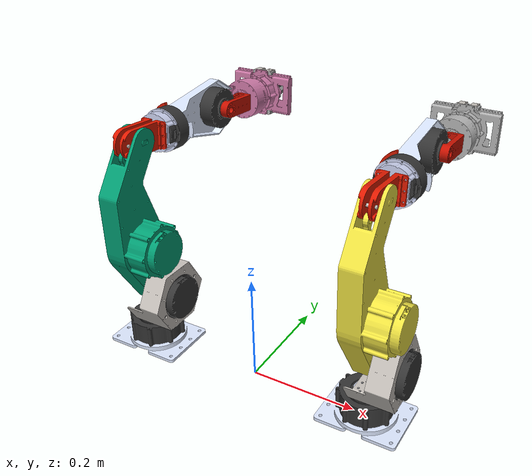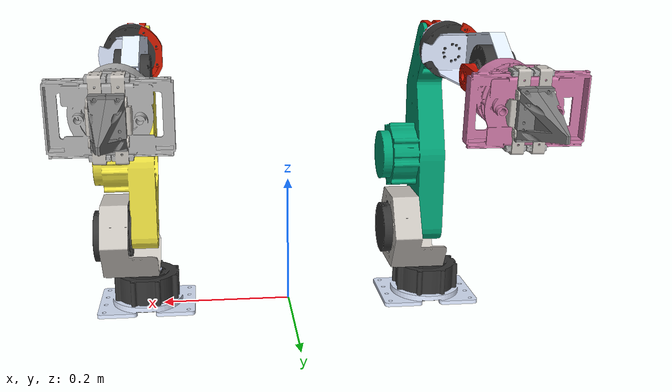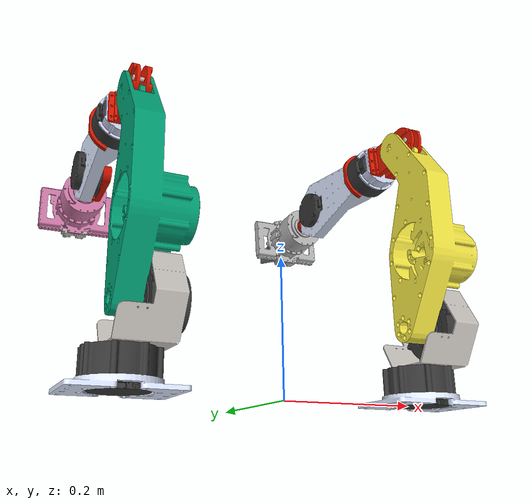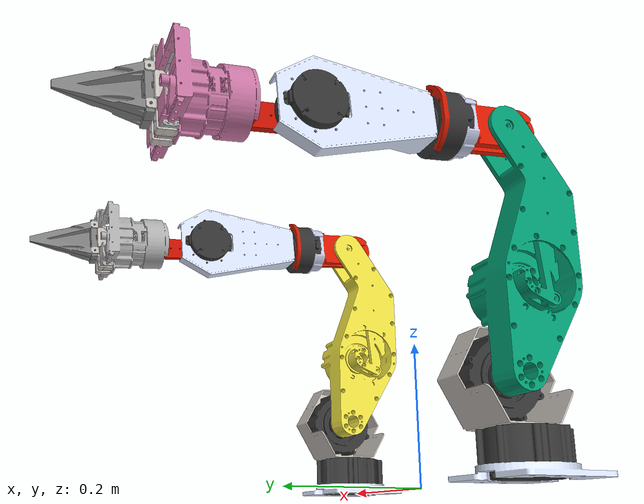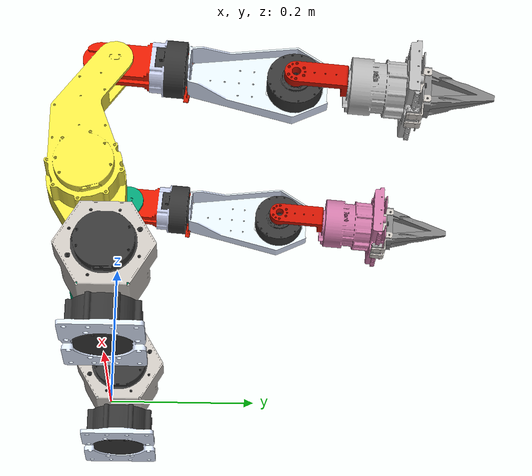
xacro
<?xml version="1.0"?>
<robot xmlns:xacro="http://www.ros.org/wiki/xacro" name="dual_mevion">

  <xacro:include filename="$(find mevion)/models/mevion_dae.urdf.xacro"/>

  <xacro:mevion prefix="RL"/>
  <xacro:mevion prefix="RF"/>

  <link name="world"/>

  <joint name="RL_world_joint" type="fixed">
    <parent link="world"/>
    <child link="RL_base_link"/>
    <origin xyz="-0.225 0 0" rpy="0 0 1.5708"/>
  </joint>

  <joint name="RF_world_joint" type="fixed">
    <parent link="world"/>
    <child link="RF_base_link"/>
    <origin xyz="0.225 0 0" rpy="0 0 1.5708"/>
  </joint>

</robot>

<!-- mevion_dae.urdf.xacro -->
<robot xmlns:xacro="http://www.ros.org/wiki/xacro">
  <xacro:macro name="mevion" params="prefix">
    <link name="${prefix}_base_link">
      <inertial>
        <origin xyz="4.48986707996124e-05 1.56759680411714e-05 0.0271570776976561" rpy="0.0 -0.0 0.0"/>
        <mass value="1.15231569296786"/>
        <inertia ixx="0.00121639765481248" ixy="2.16045733589472e-06" ixz="1.27211558344771e-07" iyy="0.000930183088898648" iyz="7.71652399037108e-07" izz="0.00201898237273294"/>
      </inertial>
      <visual>
        <geometry>
          <mesh filename="package://mevion/models/meshes/base_link.dae"/>
        </geometry>
        <origin xyz="0.0 0.0 0.0" rpy="0.0 -0.0 0.0"/>
      </visual>
      <collision>
        <geometry>
          <mesh filename="package://mevion/models/meshes/base_link.dae"/>
        </geometry>
        <origin xyz="0.0 0.0 0.0" rpy="0.0 -0.0 0.0"/>
      </collision>
    </link>
    <link name="${prefix}_shoulder_link">
      <inertial>
        <origin xyz="1.32391512477042e-05 -0.0409446319565604 0.0539290225644971" rpy="0.0 -0.0 0.0"/>
        <mass value="1.3644125395524"/>
        <inertia ixx="0.00124826945079962" ixy="7.71652399036369e-07" ixz="1.40973960628106e-06" iyy="0.00225976686875303" iyz="0.000129017482212155" izz="0.00163541860832696"/>
      </inertial>
      <visual>
        <geometry>
          <mesh filename="package://mevion/models/meshes/shoulder_link.dae"/>
        </geometry>
        <origin xyz="0.0 0.0 0.0" rpy="0.0 -0.0 0.0"/>
      </visual>
      <collision>
        <geometry>
          <mesh filename="package://mevion/models/meshes/shoulder_link.dae"/>
        </geometry>
        <origin xyz="0.0 0.0 0.0" rpy="0.0 -0.0 0.0"/>
      </collision>
    </link>
    <link name="${prefix}_upper_link">
      <inertial>
        <origin xyz="-0.0277618483264825 -0.0012686382672129 0.125214854323048" rpy="0.0 -0.0 0.0"/>
        <mass value="1.80094445183212"/>
        <inertia ixx="0.00803749436721916" ixy="1.14800261763492e-07" ixz="0.000406578011332191" iyy="0.00930308292156413" iyz="-1.22606639516895e-06" izz="0.00145022373082752"/>
      </inertial>
      <visual>
        <geometry>
          <mesh filename="package://mevion/models/meshes/upper_link.dae"/>
        </geometry>
        <origin xyz="0.0 0.0 0.0" rpy="0.0 -0.0 0.0"/>
      </visual>
      <collision>
        <geometry>
          <mesh filename="package://mevion/models/meshes/upper_link.dae"/>
        </geometry>
        <origin xyz="0.0 0.0 0.0" rpy="0.0 -0.0 0.0"/>
      </collision>
    </link>
    <link name="${prefix}_lower1_link">
      <inertial>
        <origin xyz="0.000216390735208159 0.00085993851271662 0.0518105566861265" rpy="0.0 -0.0 0.0"/>
        <mass value="0.759808237991183"/>
        <inertia ixx="0.000385157367730232" ixy="2.12381732851174e-07" ixz="-6.77307827524159e-08" iyy="0.000439974465703987" iyz="1.32894830907232e-06" izz="0.000468001343308467"/>
      </inertial>
      <visual>
        <geometry>
          <mesh filename="package://mevion/models/meshes/lower1_link.dae"/>
        </geometry>
        <origin xyz="0.0 0.0 0.0" rpy="0.0 -0.0 0.0"/>
      </visual>
      <collision>
        <geometry>
          <mesh filename="package://mevion/models/meshes/lower1_link.dae"/>
        </geometry>
        <origin xyz="0.0 0.0 0.0" rpy="0.0 -0.0 0.0"/>
      </collision>
    </link>
    <link name="${prefix}_lower2_link">
      <inertial>
        <origin xyz="-0.000278339581275338 0.0123874376852598 0.124865641413663" rpy="0.0 -0.0 0.0"/>
        <mass value="0.583365919550584"/>
        <inertia ixx="0.000771948673443437" ixy="-7.69274924911199e-08" ixz="2.53703947046426e-07" iyy="0.00106516226878555" iyz="-4.63320416929162e-05" izz="0.000375373330701929"/>
      </inertial>
      <visual>
        <geometry>
          <mesh filename="package://mevion/models/meshes/lower2_link.dae"/>
        </geometry>
        <origin xyz="0.0 0.0 0.0" rpy="0.0 -0.0 0.0"/>
      </visual>
      <collision>
        <geometry>
          <mesh filename="package://mevion/models/meshes/lower2_link.dae"/>
        </geometry>
        <origin xyz="0.0 0.0 0.0" rpy="0.0 -0.0 0.0"/>
      </collision>
    </link>
    <link name="${prefix}_wrist_link">
      <inertial>
        <origin xyz="-1.96082330388783e-16 -0.0041231568611668 0.0340020937943818" rpy="0.0 -0.0 0.0"/>
        <mass value="0.131493017924709"/>
        <inertia ixx="7.37027067414564e-05" ixy="1.58073820480577e-20" ixz="2.25784009070445e-19" iyy="7.41887028724778e-05" iyz="-7.28567584499028e-06" izz="1.53903100360496e-05"/>
      </inertial>
      <visual>
        <geometry>
          <mesh filename="package://mevion/models/meshes/wrist_link.dae"/>
        </geometry>
        <origin xyz="0.0 0.0 0.0" rpy="0.0 -0.0 0.0"/>
      </visual>
      <collision>
        <geometry>
          <mesh filename="package://mevion/models/meshes/wrist_link.dae"/>
        </geometry>
        <origin xyz="0.0 0.0 0.0" rpy="0.0 -0.0 0.0"/>
      </collision>
    </link>
    <link name="${prefix}_hand_link">
      <inertial>
        <origin xyz="0.000159003479216479 -0.000163984402889978 0.0525704717537405" rpy="0.0 -0.0 0.0"/>
        <mass value="0.978434240360148"/>
        <inertia ixx="0.000520820242382646" ixy="-1.76299593288957e-06" ixz="8.17043569888491e-08" iyy="0.000400595546523087" iyz="1.65229042549845e-06" izz="0.000858089167834087"/>
      </inertial>
      <visual>
        <geometry>
          <mesh filename="package://mevion/models/meshes/hand_link.dae"/>
        </geometry>
        <origin xyz="0.0 0.0 0.0" rpy="0.0 -0.0 0.0"/>
      </visual>
      <collision>
        <geometry>
          <mesh filename="package://mevion/models/meshes/hand_link.dae"/>
        </geometry>
        <origin xyz="0.0 0.0 0.0" rpy="0.0 -0.0 0.0"/>
      </collision>
    </link>
    <link name="${prefix}_gripper_link_left">
      <inertial>
        <origin xyz="-1.32198004197986e-08 0.0115784140352716 0.00240127722711736" rpy="0.0 -0.0 0.0"/>
        <mass value="0.122787167555386"/>
        <inertia ixx="2.85978247230261e-05" ixy="3.08272354522243e-12" ixz="-9.47873944077953e-12" iyy="6.781592338682e-05" iyz="1.90382486267302e-06" izz="4.61876729265133e-05"/>
      </inertial>
      <visual>
        <geometry>
          <mesh filename="package://mevion/models/meshes/gripper_link_left.dae"/>
        </geometry>
        <origin xyz="0.0 0.0 0.0" rpy="0.0 -0.0 0.0"/>
      </visual>
      <collision>
        <geometry>
          <mesh filename="package://mevion/models/meshes/gripper_link_left.dae"/>
        </geometry>
        <origin xyz="0.0 0.0 0.0" rpy="0.0 -0.0 0.0"/>
      </collision>
    </link>
    <link name="${prefix}_gripper_link_right">
      <inertial>
        <origin xyz="1.32198536631412e-08 -0.0115784140352595 0.00240127722700467" rpy="0.0 -0.0 0.0"/>
        <mass value="0.12278716755486"/>
        <inertia ixx="2.85978247229801e-05" ixy="3.08277439819197e-12" ixz="9.47875029139586e-12" iyy="6.78159233867156e-05" iyz="-1.90382486266821e-06" izz="4.61876729263949e-05"/>
      </inertial>
      <visual>
        <geometry>
          <mesh filename="package://mevion/models/meshes/gripper_link_right.dae"/>
        </geometry>
        <origin xyz="0.0 0.0 0.0" rpy="0.0 -0.0 0.0"/>
      </visual>
      <collision>
        <geometry>
          <mesh filename="package://mevion/models/meshes/gripper_link_right.dae"/>
        </geometry>
        <origin xyz="0.0 0.0 0.0" rpy="0.0 -0.0 0.0"/>
      </collision>
    </link>
    <joint name="${prefix}_shoulder_yaw" type="revolute">
      <parent link="${prefix}_base_link"/>
      <child link="${prefix}_shoulder_link"/>
      <axis xyz="0. 0. 1."/>
      <limit lower="-1.58" upper="1.58" effort="60" velocity="18.85" />
      <origin xyz="0.0 0.0 0.058" rpy="0.0 -0.0 0.0"/>
    </joint>
    <joint name="${prefix}_shoulder_pitch" type="revolute">
      <parent link="${prefix}_shoulder_link"/>
      <child link="${prefix}_upper_link"/>
      <axis xyz=" 0. 1.  0."/>
      <limit lower="-0.91" upper="1.45" effort="60" velocity="18.85" />
      <origin xyz="0.0 -0.02 0.0580000000000024" rpy="0.0 -0.0 0.0"/>
    </joint>
    <joint name="${prefix}_elbow_pitch" type="revolute">
      <parent link="${prefix}_upper_link"/>
      <child link="${prefix}_lower1_link"/>
      <axis xyz=" 0. 1.  0."/>
      <limit lower="0.61" upper="2.69" effort="60" velocity="18.85" />
      <origin xyz="0.0 0.02 0.3" rpy="0.0 -0.0 0.0"/>
    </joint>
    <joint name="${prefix}_elbow_yaw" type="revolute">
      <parent link="${prefix}_lower1_link"/>
      <child link="${prefix}_lower2_link"/>
      <axis xyz="0. 0. 1."/>
      <limit lower="-1.58" upper="1.58" effort="17" velocity="37.5" />
      <origin xyz="0.0 0.0 0.102000000000004" rpy="0.0 -0.0 0.0"/>
    </joint>
    <joint name="${prefix}_wrist_pitch" type="revolute">
      <parent link="${prefix}_lower2_link"/>
      <child link="${prefix}_wrist_link"/>
      <axis xyz="0. 1. 0."/>
      <limit lower="-2.06" upper="2.06" effort="17" velocity="37.5" />
      <origin xyz="0.0 -0.011000000000004 0.148" rpy="0.0 -0.0 0.0"/>
    </joint>
    <joint name="${prefix}_wrist_yaw" type="revolute">
      <parent link="${prefix}_wrist_link"/>
      <child link="${prefix}_hand_link"/>
      <axis xyz=" 0.  0. 1."/>
      <limit lower="-1.58" upper="1.58" effort="17" velocity="37.5" />
      <origin xyz="0.0 0.0110000000000001 0.072" rpy="0.0 -0.0 0.0"/>
    </joint>
    <joint name="${prefix}_gripper_prismatic_left" type="prismatic">
      <parent link="${prefix}_hand_link"/>
      <child link="${prefix}_gripper_link_left"/>
      <axis xyz="0. 1. 0."/>
      <limit lower="0.0" upper="0.0415" effort="12" velocity="25.0" />
      <origin xyz="0.0 0.0 0.105500000000004" rpy="0.0 -0.0 0.0"/>
    </joint>
    <joint name="${prefix}_gripper_prismatic_right" type="prismatic">
      <mimic joint="${prefix}_gripper_prismatic_left" multiplier="1.0" offset="0.0"/>
      <parent link="${prefix}_hand_link"/>
      <child link="${prefix}_gripper_link_right"/>
      <axis xyz=" 0. -1.  0."/>
      <limit lower="0.0" upper="0.0415" effort="12" velocity="25.0" />
      <origin xyz="0.0 0.0 0.105500000000004" rpy="0.0 -0.0 0.0"/>
    </joint>
  </xacro:macro>
</robot>
